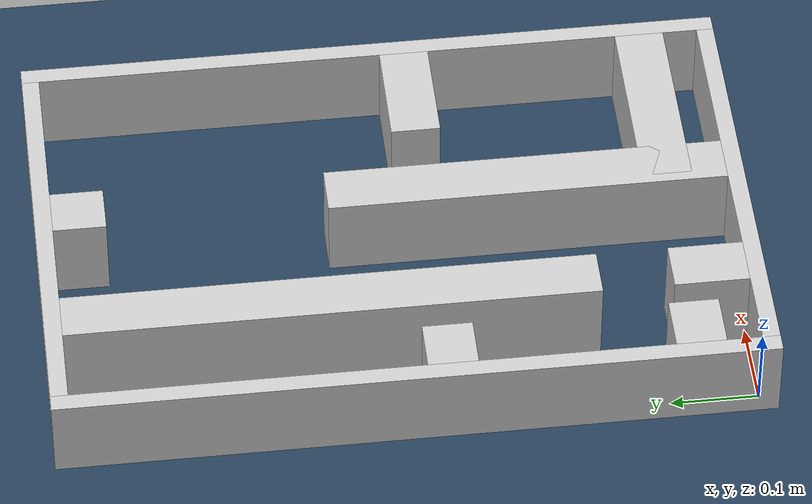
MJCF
<?xml version="1.0" ?>
<mujoco model="generated_real_template">
  <compiler angle="degree"/>
  <option timestep="0.002" integrator="implicitfast" iterations="100" cone="elliptic"/>
  <default>
    <geom density="1"/>
  </default>
  <asset>
    <texture builtin="gradient" height="3072" rgb1="0.3 0.5 0.7" rgb2="0 0 0" type="skybox" width="512"/>
    <texture builtin="checker" height="300" mark="edge" markrgb="0.8 0.8 0.8" name="groundplane" rgb1="0.2 0.3 0.4" rgb2="0.1 0.2 0.3" type="2d" width="300"/>
    <material name="groundplane" reflectance="0.2" texrepeat="5 5" texture="groundplane" texuniform="true"/>
  </asset>
  <worldbody>
    <light dir="0 0 -1" directional="true" pos="0 0 1.5"/>
    <geom name="floor" type="plane" condim="4" friction="0.5 0.005 0.001" material="groundplane" size="0 0 0.05"/>
    <body name="walls">
      <geom name="wall_boundary_left" type="box" condim="4" friction="1.0 0.005 0.0001" rgba="0.8 0.8 0.8 1" pos="-0.010000 0.387500 0.050000" euler="0 0 0.000000" size="0.010000 0.407500 0.050000"/>
      <geom name="wall_boundary_right" type="box" condim="4" friction="1.0 0.005 0.0001" rgba="0.8 0.8 0.8 1" pos="0.500000 0.387500 0.050000" euler="0 0 0.000000" size="0.010000 0.407500 0.050000"/>
      <geom name="wall_boundary_bottom" type="box" condim="4" friction="1.0 0.005 0.0001" rgba="0.8 0.8 0.8 1" pos="0.245000 -0.010000 0.050000" euler="0 0 0.000000" size="0.245000 0.010000 0.050000"/>
      <geom name="wall_boundary_top" type="box" condim="4" friction="1.0 0.005 0.0001" rgba="0.8 0.8 0.8 1" pos="0.245000 0.785000 0.050000" euler="0 0 0.000000" size="0.245000 0.010000 0.050000"/>
      <geom name="wall_inner_1_1" type="box" condim="4" friction="1.0 0.005 0.0001" rgba="0.8 0.8 0.8 1" pos="0.031111 0.068596 0.050000" euler="0 0 0.000000" size="0.031111 0.028500 0.050000"/>
      <geom name="wall_inner_1_2" type="box" condim="4" friction="1.0 0.005 0.0001" rgba="0.8 0.8 0.8 1" pos="0.376175 0.068596 0.050000" euler="0 0 0.000000" size="0.113825 0.028500 0.050000"/>
      <geom name="wall_inner_2_1" type="box" condim="4" friction="1.0 0.005 0.0001" rgba="0.8 0.8 0.8 1" pos="0.117337 0.042844 0.050000" euler="0 0 90.000000" size="0.042844 0.028500 0.050000"/>
      <geom name="wall_inner_2_2" type="box" condim="4" friction="1.0 0.005 0.0001" rgba="0.8 0.8 0.8 1" pos="0.117337 0.471035 0.050000" euler="0 0 90.000000" size="0.303965 0.028500 0.050000"/>
      <geom name="wall_inner_3_1" type="box" condim="4" friction="1.0 0.005 0.0001" rgba="0.8 0.8 0.8 1" pos="0.278615 0.230168 0.050000" euler="0 0 90.000000" size="0.230168 0.028500 0.050000"/>
      <geom name="wall_inner_3_2" type="box" condim="4" friction="1.0 0.005 0.0001" rgba="0.8 0.8 0.8 1" pos="0.278615 0.744426 0.050000" euler="0 0 90.000000" size="0.030574 0.028500 0.050000"/>
      <geom name="wall_inner_4_1" type="box" condim="4" friction="1.0 0.005 0.0001" rgba="0.8 0.8 0.8 1" pos="0.028821 0.347099 0.050000" euler="0 0 0.000000" size="0.028821 0.028500 0.050000"/>
      <geom name="wall_inner_4_2" type="box" condim="4" friction="1.0 0.005 0.0001" rgba="0.8 0.8 0.8 1" pos="0.426538 0.347099 0.050000" euler="0 0 0.000000" size="0.063462 0.028500 0.050000"/>
    </body>
  </worldbody>
</mujoco>
